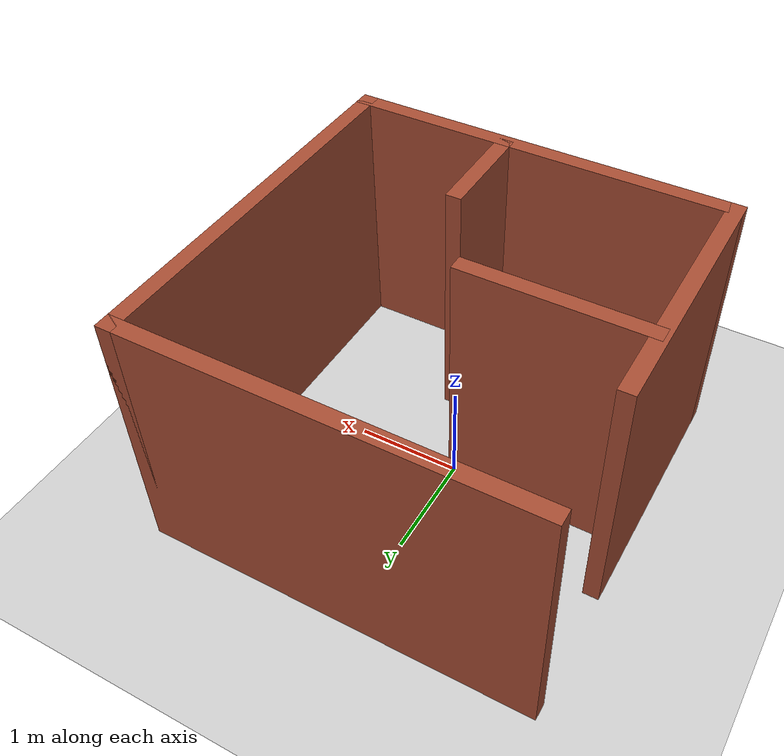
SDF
<sdf version="1.6">
 <world name="default">
  <light name="sun" type="directional">
   <pose>0 0 10 0 -0 0</pose>
   <diffuse>0.8 0.8 0.8 1</diffuse>
   <specular>0.2 0.2 0.2 1</specular>
   <attenuation>
    <range>1000</range>
    <constant>0.9</constant>
    <linear>0.01</linear>
    <quadratic>0.001</quadratic>
   </attenuation>
   <direction>-0.5 0.1 -0.9</direction>
  </light>
  <model name="ground_plane">
   <static>1</static>
   <link name="link">
    <collision name="collision">
     <geometry><plane><normal>0 0 1</normal><size>100 100</size></plane></geometry>
     <surface>
      <contact><collide_bitmask>65535</collide_bitmask></contact>
      <friction><ode><mu>100</mu><mu2>50</mu2></ode></friction>
     </surface>
    </collision>
    <visual name="visual">
     <cast_shadows>0</cast_shadows>
     <geometry><plane><normal>0 0 1</normal><size>100 100</size></plane></geometry>
     <material>
      <script><uri>file://media/materials/scripts/gazebo.material</uri><name>Gazebo/Grey</name></script>
     </material>
    </visual>
   </link>
  </model>
  <gravity>0 0 -9.8</gravity>
  <magnetic_field>6e-06 2.3e-05 -4.2e-05</magnetic_field>
  <atmosphere type="adiabatic"/>
  <physics name="default_physics" default="0" type="ode">
   <max_step_size>0.001</max_step_size>
   <real_time_factor>1</real_time_factor>
   <real_time_update_rate>1000</real_time_update_rate>
  </physics>
  <scene><ambient>0.4 0.4 0.4 1</ambient><background>0.7 0.7 0.7 1</background><shadows>1</shadows></scene>
  <audio><device>default</device></audio>
  <spherical_coordinates>
   <surface_model>EARTH_WGS84</surface_model>
   <latitude_deg>0</latitude_deg>
   <longitude_deg>0</longitude_deg>
   <elevation>0</elevation>
   <heading_deg>0</heading_deg>
  </spherical_coordinates>
  <model name="aiitra_world_3">
   <pose>0.11 0.05 0 0 -0 0</pose>
   <link name="Wall_0">
    <collision name="Wall_0_Collision">
     <geometry><box><size>3.75 0.15 2.5</size></box></geometry>
     <pose>0 0 1.25 0 -0 0</pose>
    </collision>
    <visual name="Wall_0_Visual">
     <pose>0 0 1.25 0 -0 0</pose>
     <geometry><box><size>3.75 0.15 2.5</size></box></geometry>
     <material>
      <script><uri>file://media/materials/scripts/gazebo.material</uri><name>Gazebo/Bricks</name></script>
      <ambient>0.996078 0.47451 0.0196078 1</ambient>
     </material>
     <meta><layer>0</layer></meta>
    </visual>
    <pose>-0 1.8 0 0 -0 0</pose>
   </link>
   <link name="Wall_1">
    <collision name="Wall_1_Collision">
     <geometry><box><size>3.75 0.15 2.5</size></box></geometry>
     <pose>0 0 1.25 0 -0 0</pose>
    </collision>
    <visual name="Wall_1_Visual">
     <pose>0 0 1.25 0 -0 0</pose>
     <geometry><box><size>3.75 0.15 2.5</size></box></geometry>
     <material>
      <script><uri>file://media/materials/scripts/gazebo.material</uri><name>Gazebo/Bricks</name></script>
      <ambient>0.921569 0.807843 0.615686 1</ambient>
     </material>
     <meta><layer>0</layer></meta>
    </visual>
    <pose>1.8 0 0 0 -0 -1.5708</pose>
   </link>
   <link name="Wall_2">
    <collision name="Wall_2_Collision">
     <geometry><box><size>3.75 0.15 2.5</size></box></geometry>
     <pose>0 0 1.25 0 -0 0</pose>
    </collision>
    <visual name="Wall_2_Visual">
     <pose>0 0 1.25 0 -0 0</pose>
     <geometry><box><size>3.75 0.15 2.5</size></box></geometry>
     <material>
      <script><uri>file://media/materials/scripts/gazebo.material</uri><name>Gazebo/Bricks</name></script>
      <ambient>0.921569 0.807843 0.615686 1</ambient>
     </material>
     <meta><layer>0</layer></meta>
    </visual>
    <pose>-0 -1.8 0 0 -0 3.14159</pose>
   </link>
   <link name="Wall_3">
    <collision name="Wall_3_Collision">
     <geometry><box><size>2.5 0.15 2.5</size></box></geometry>
     <pose>0 0 1.25 0 -0 0</pose>
    </collision>
    <visual name="Wall_3_Visual">
     <pose>0 0 1.25 0 -0 0</pose>
     <geometry><box><size>2.5 0.15 2.5</size></box></geometry>
     <material>
      <script><uri>file://media/materials/scripts/gazebo.material</uri><name>Gazebo/Bricks</name></script>
      <ambient>0.996078 0.47451 0.0196078 1</ambient>
     </material>
     <meta><layer>0</layer></meta>
    </visual>
    <pose>-1.8 -0.625 0 0 -0 1.5708</pose>
   </link>
   <link name="Wall_5">
    <collision name="Wall_5_Collision">
     <geometry><box><size>1.75 0.15 2.5</size></box></geometry>
     <pose>0 0 1.25 0 -0 0</pose>
    </collision>
    <visual name="Wall_5_Visual">
     <pose>0 0 1.25 0 -0 0</pose>
     <geometry><box><size>1.75 0.15 2.5</size></box></geometry>
     <material>
      <script><uri>file://media/materials/scripts/gazebo.material</uri><name>Gazebo/Bricks</name></script>
      <ambient>0.996078 0.47451 0.0196078 1</ambient>
     </material>
     <meta><layer>0</layer></meta>
    </visual>
    <pose>-0.96 -0.06 0 0 -0 0</pose>
   </link>
   <link name="Wall_7">
    <collision name="Wall_7_Collision">
     <geometry><box><size>1 0.15 2.5</size></box></geometry>
     <pose>0 0 1.25 0 -0 0</pose>
    </collision>
    <visual name="Wall_7_Visual">
     <pose>0 0 1.25 0 -0 0</pose>
     <geometry><box><size>1 0.15 2.5</size></box></geometry>
     <material>
      <script><uri>file://media/materials/scripts/gazebo.material</uri><name>Gazebo/Bricks</name></script>
      <ambient>0.996078 0.47451 0.0196078 1</ambient>
     </material>
     <meta><layer>0</layer></meta>
    </visual>
    <pose>0.34 -1.315 0 0 -0 1.5708</pose>
   </link>
   <static>1</static>
  </model>
 </world>
</sdf>
